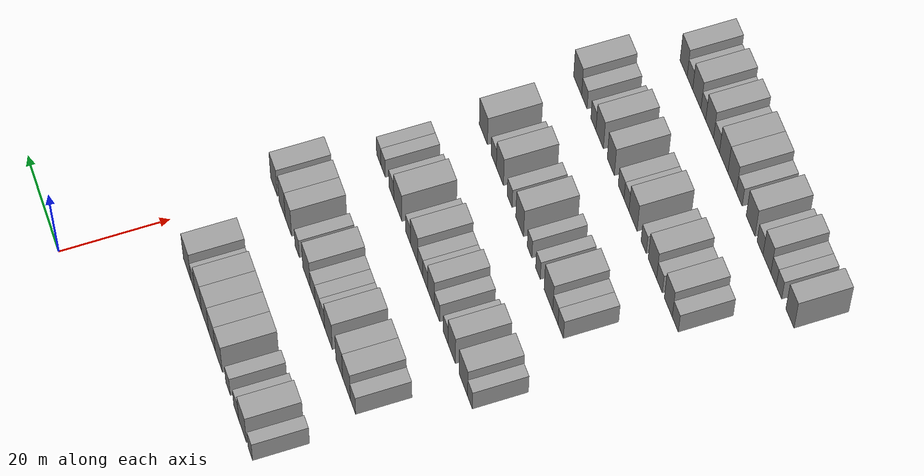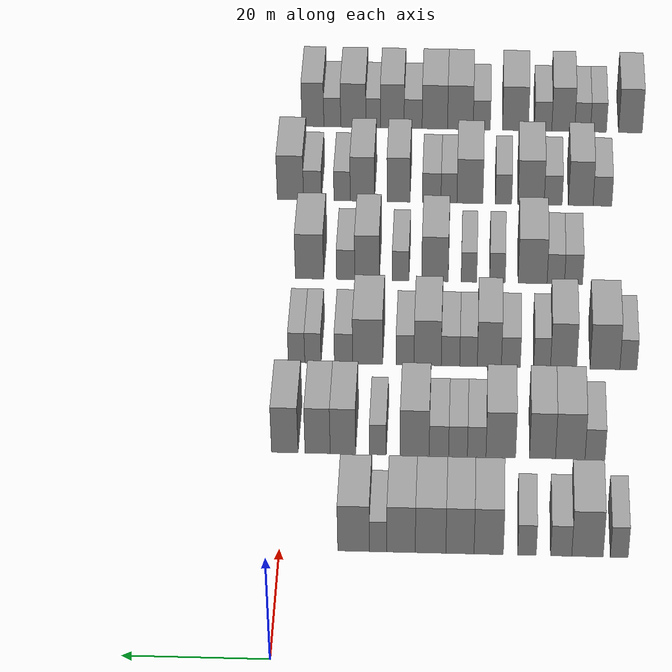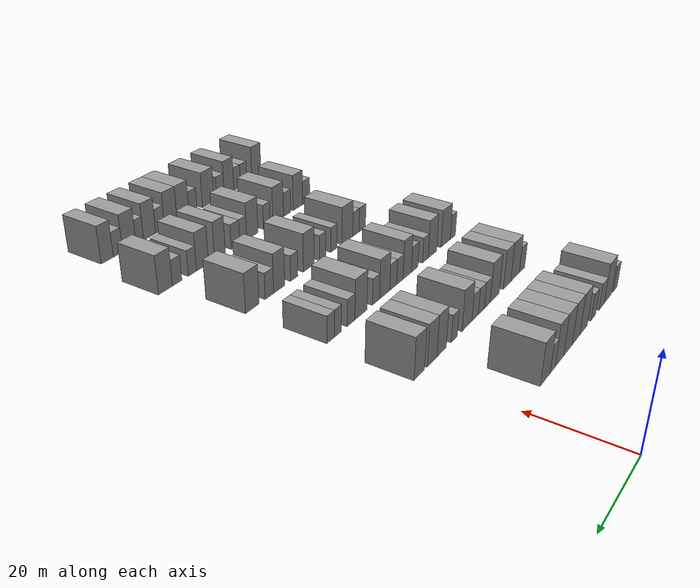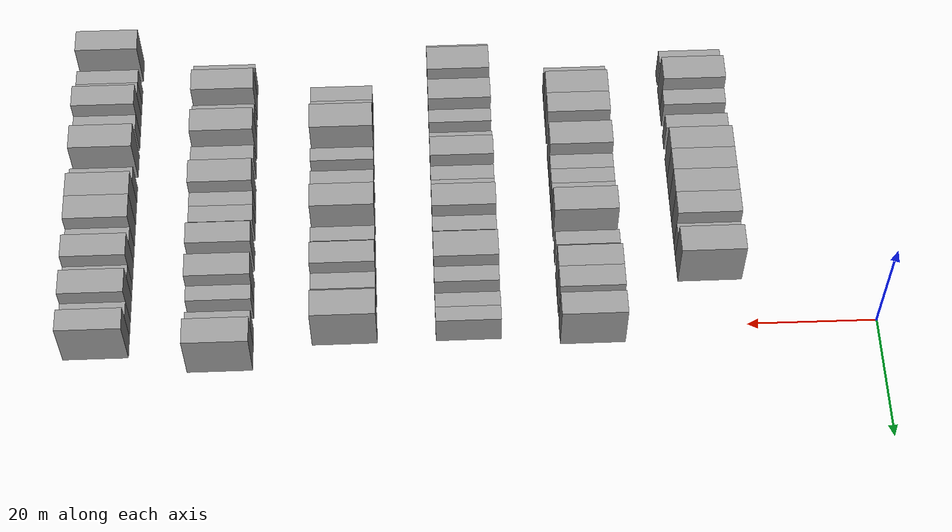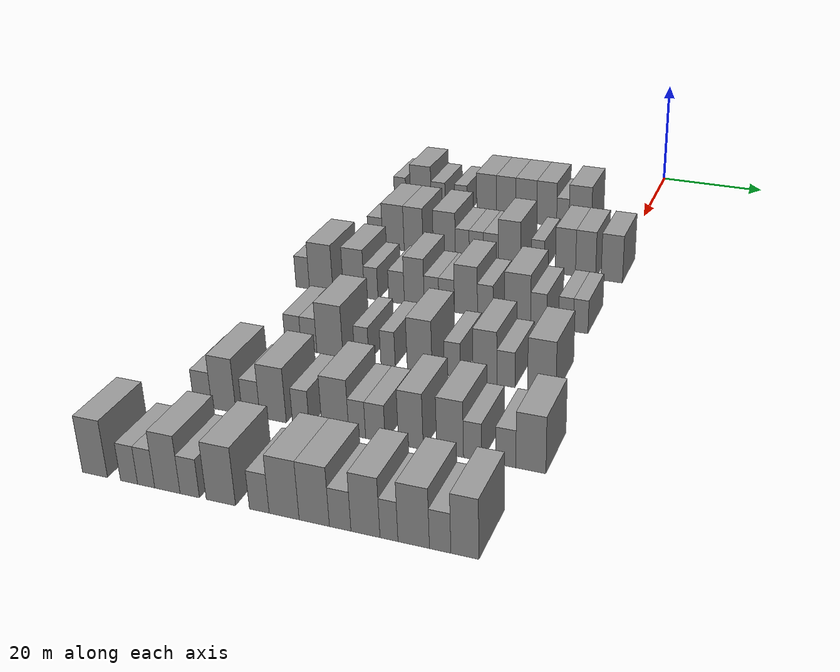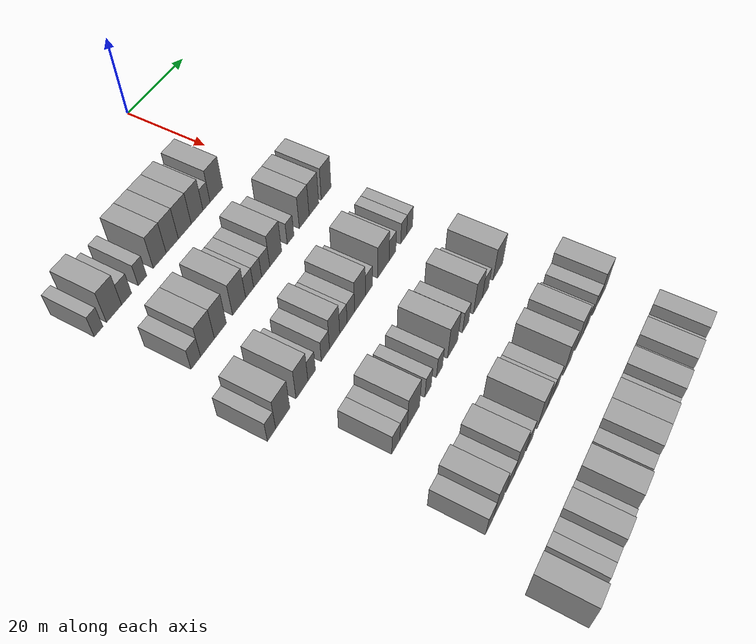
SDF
<sdf version="1.6">
 <world name="default">
  <model name="building_80">
   <static>1</static>
   <pose>25.0000 -47.3221 0 0.000000 0.000000 0.000000</pose>
   <link name="link">
    <pose>0 0 3.00 0 0 0</pose>
    <collision name="collision"><geometry><box><size>10.0000 2.4721 6.0000</size></box></geometry></collision>
    <visual name="visual">
     <cast_shadows>0</cast_shadows>
     <geometry><box><size>10.0000 2.4721 6.0000</size></box></geometry>
     <material>
      <script>
       <uri>model://grey_wall/materials/scripts</uri>
       <uri>model://grey_wall/materials/textures</uri>
       <name>vrc/grey_wall</name>
      </script>
     </material>
    </visual>
   </link>
  </model>
  <model name="building_81">
   <static>1</static>
   <pose>25.0000 -42.9015 0 0.000000 0.000000 0.000000</pose>
   <link name="link">
    <pose>0 0 4.50 0 0 0</pose>
    <collision name="collision"><geometry><box><size>10.0000 4.3690 9.0000</size></box></geometry></collision>
    <visual name="visual">
     <cast_shadows>0</cast_shadows>
     <geometry><box><size>10.0000 4.3690 9.0000</size></box></geometry>
     <material>
      <script>
       <uri>model://grey_wall/materials/scripts</uri>
       <uri>model://grey_wall/materials/textures</uri>
       <name>vrc/grey_wall</name>
      </script>
     </material>
    </visual>
   </link>
  </model>
  <model name="building_82">
   <static>1</static>
   <pose>25.0000 -39.2447 0 0.000000 0.000000 0.000000</pose>
   <link name="link">
    <pose>0 0 3.00 0 0 0</pose>
    <collision name="collision"><geometry><box><size>10.0000 2.9447 6.0000</size></box></geometry></collision>
    <visual name="visual">
     <cast_shadows>0</cast_shadows>
     <geometry><box><size>10.0000 2.9447 6.0000</size></box></geometry>
     <material>
      <script>
       <uri>model://grey_wall/materials/scripts</uri>
       <uri>model://grey_wall/materials/textures</uri>
       <name>vrc/grey_wall</name>
      </script>
     </material>
    </visual>
   </link>
  </model>
  <model name="building_83">
   <static>1</static>
   <pose>25.0000 -34.4802 0 0.000000 0.000000 0.000000</pose>
   <link name="link">
    <pose>0 0 3.00 0 0 0</pose>
    <collision name="collision"><geometry><box><size>10.0000 2.5842 6.0000</size></box></geometry></collision>
    <visual name="visual">
     <cast_shadows>0</cast_shadows>
     <geometry><box><size>10.0000 2.5842 6.0000</size></box></geometry>
     <material>
      <script>
       <uri>model://grey_wall/materials/scripts</uri>
       <uri>model://grey_wall/materials/textures</uri>
       <name>vrc/grey_wall</name>
      </script>
     </material>
    </visual>
   </link>
  </model>
  <model name="building_84">
   <static>1</static>
   <pose>25.0000 -29.1527 0 0.000000 0.000000 0.000000</pose>
   <link name="link">
    <pose>0 0 4.50 0 0 0</pose>
    <collision name="collision"><geometry><box><size>10.0000 4.0708 9.0000</size></box></geometry></collision>
    <visual name="visual">
     <cast_shadows>0</cast_shadows>
     <geometry><box><size>10.0000 4.0708 9.0000</size></box></geometry>
     <material>
      <script>
       <uri>model://grey_wall/materials/scripts</uri>
       <uri>model://grey_wall/materials/textures</uri>
       <name>vrc/grey_wall</name>
      </script>
     </material>
    </visual>
   </link>
  </model>
  <model name="building_85">
   <static>1</static>
   <pose>25.0000 -25.1547 0 0.000000 0.000000 0.000000</pose>
   <link name="link">
    <pose>0 0 4.50 0 0 0</pose>
    <collision name="collision"><geometry><box><size>10.0000 3.9250 9.0000</size></box></geometry></collision>
    <visual name="visual">
     <cast_shadows>0</cast_shadows>
     <geometry><box><size>10.0000 3.9250 9.0000</size></box></geometry>
     <material>
      <script>
       <uri>model://grey_wall/materials/scripts</uri>
       <uri>model://grey_wall/materials/textures</uri>
       <name>vrc/grey_wall</name>
      </script>
     </material>
    </visual>
   </link>
  </model>
  <model name="building_86">
   <static>1</static>
   <pose>25.0000 -21.0648 0 0.000000 0.000000 0.000000</pose>
   <link name="link">
    <pose>0 0 4.50 0 0 0</pose>
    <collision name="collision"><geometry><box><size>10.0000 4.2548 9.0000</size></box></geometry></collision>
    <visual name="visual">
     <cast_shadows>0</cast_shadows>
     <geometry><box><size>10.0000 4.2548 9.0000</size></box></geometry>
     <material>
      <script>
       <uri>model://grey_wall/materials/scripts</uri>
       <uri>model://grey_wall/materials/textures</uri>
       <name>vrc/grey_wall</name>
      </script>
     </material>
    </visual>
   </link>
  </model>
  <model name="building_87">
   <static>1</static>
   <pose>25.0000 -16.9578 0 0.000000 0.000000 0.000000</pose>
   <link name="link">
    <pose>0 0 4.50 0 0 0</pose>
    <collision name="collision"><geometry><box><size>10.0000 3.9593 9.0000</size></box></geometry></collision>
    <visual name="visual">
     <cast_shadows>0</cast_shadows>
     <geometry><box><size>10.0000 3.9593 9.0000</size></box></geometry>
     <material>
      <script>
       <uri>model://grey_wall/materials/scripts</uri>
       <uri>model://grey_wall/materials/textures</uri>
       <name>vrc/grey_wall</name>
      </script>
     </material>
    </visual>
   </link>
  </model>
  <model name="building_88">
   <static>1</static>
   <pose>25.0000 -13.7613 0 0.000000 0.000000 0.000000</pose>
   <link name="link">
    <pose>0 0 3.00 0 0 0</pose>
    <collision name="collision"><geometry><box><size>10.0000 2.4338 6.0000</size></box></geometry></collision>
    <visual name="visual">
     <cast_shadows>0</cast_shadows>
     <geometry><box><size>10.0000 2.4338 6.0000</size></box></geometry>
     <material>
      <script>
       <uri>model://grey_wall/materials/scripts</uri>
       <uri>model://grey_wall/materials/textures</uri>
       <name>vrc/grey_wall</name>
      </script>
     </material>
    </visual>
   </link>
  </model>
  <model name="building_89">
   <static>1</static>
   <pose>25.0000 -10.3332 0 0.000000 0.000000 0.000000</pose>
   <link name="link">
    <pose>0 0 4.50 0 0 0</pose>
    <collision name="collision"><geometry><box><size>10.0000 4.4223 9.0000</size></box></geometry></collision>
    <visual name="visual">
     <cast_shadows>0</cast_shadows>
     <geometry><box><size>10.0000 4.4223 9.0000</size></box></geometry>
     <material>
      <script>
       <uri>model://grey_wall/materials/scripts</uri>
       <uri>model://grey_wall/materials/textures</uri>
       <name>vrc/grey_wall</name>
      </script>
     </material>
    </visual>
   </link>
  </model>
  <model name="building_244">
   <static>1</static>
   <pose>44.0000 -44.3955 0 0.000000 0.000000 0.000000</pose>
   <link name="link">
    <pose>0 0 3.00 0 0 0</pose>
    <collision name="collision"><geometry><box><size>10.0000 2.8827 6.0000</size></box></geometry></collision>
    <visual name="visual">
     <cast_shadows>0</cast_shadows>
     <geometry><box><size>10.0000 2.8827 6.0000</size></box></geometry>
     <material>
      <script>
       <uri>model://grey_wall/materials/scripts</uri>
       <uri>model://grey_wall/materials/textures</uri>
       <name>vrc/grey_wall</name>
      </script>
     </material>
    </visual>
   </link>
  </model>
  <model name="building_245">
   <static>1</static>
   <pose>44.0000 -40.8205 0 0.000000 0.000000 0.000000</pose>
   <link name="link">
    <pose>0 0 4.50 0 0 0</pose>
    <collision name="collision"><geometry><box><size>10.0000 4.2674 9.0000</size></box></geometry></collision>
    <visual name="visual">
     <cast_shadows>0</cast_shadows>
     <geometry><box><size>10.0000 4.2674 9.0000</size></box></geometry>
     <material>
      <script>
       <uri>model://grey_wall/materials/scripts</uri>
       <uri>model://grey_wall/materials/textures</uri>
       <name>vrc/grey_wall</name>
      </script>
     </material>
    </visual>
   </link>
  </model>
  <model name="building_246">
   <static>1</static>
   <pose>44.0000 -36.8082 0 0.000000 0.000000 0.000000</pose>
   <link name="link">
    <pose>0 0 4.50 0 0 0</pose>
    <collision name="collision"><geometry><box><size>10.0000 3.7572 9.0000</size></box></geometry></collision>
    <visual name="visual">
     <cast_shadows>0</cast_shadows>
     <geometry><box><size>10.0000 3.7572 9.0000</size></box></geometry>
     <material>
      <script>
       <uri>model://grey_wall/materials/scripts</uri>
       <uri>model://grey_wall/materials/textures</uri>
       <name>vrc/grey_wall</name>
      </script>
     </material>
    </visual>
   </link>
  </model>
  <model name="building_247">
   <static>1</static>
   <pose>44.0000 -30.7887 0 0.000000 0.000000 0.000000</pose>
   <link name="link">
    <pose>0 0 4.50 0 0 0</pose>
    <collision name="collision"><geometry><box><size>10.0000 4.2819 9.0000</size></box></geometry></collision>
    <visual name="visual">
     <cast_shadows>0</cast_shadows>
     <geometry><box><size>10.0000 4.2819 9.0000</size></box></geometry>
     <material>
      <script>
       <uri>model://grey_wall/materials/scripts</uri>
       <uri>model://grey_wall/materials/textures</uri>
       <name>vrc/grey_wall</name>
      </script>
     </material>
    </visual>
   </link>
  </model>
  <model name="building_248">
   <static>1</static>
   <pose>44.0000 -27.3065 0 0.000000 0.000000 0.000000</pose>
   <link name="link">
    <pose>0 0 3.00 0 0 0</pose>
    <collision name="collision"><geometry><box><size>10.0000 2.6823 6.0000</size></box></geometry></collision>
    <visual name="visual">
     <cast_shadows>0</cast_shadows>
     <geometry><box><size>10.0000 2.6823 6.0000</size></box></geometry>
     <material>
      <script>
       <uri>model://grey_wall/materials/scripts</uri>
       <uri>model://grey_wall/materials/textures</uri>
       <name>vrc/grey_wall</name>
      </script>
     </material>
    </visual>
   </link>
  </model>
  <model name="building_249">
   <static>1</static>
   <pose>44.0000 -24.6082 0 0.000000 0.000000 0.000000</pose>
   <link name="link">
    <pose>0 0 3.00 0 0 0</pose>
    <collision name="collision"><geometry><box><size>10.0000 2.7143 6.0000</size></box></geometry></collision>
    <visual name="visual">
     <cast_shadows>0</cast_shadows>
     <geometry><box><size>10.0000 2.7143 6.0000</size></box></geometry>
     <material>
      <script>
       <uri>model://grey_wall/materials/scripts</uri>
       <uri>model://grey_wall/materials/textures</uri>
       <name>vrc/grey_wall</name>
      </script>
     </material>
    </visual>
   </link>
  </model>
  <model name="building_250">
   <static>1</static>
   <pose>44.0000 -21.8479 0 0.000000 0.000000 0.000000</pose>
   <link name="link">
    <pose>0 0 3.00 0 0 0</pose>
    <collision name="collision"><geometry><box><size>10.0000 2.8063 6.0000</size></box></geometry></collision>
    <visual name="visual">
     <cast_shadows>0</cast_shadows>
     <geometry><box><size>10.0000 2.8063 6.0000</size></box></geometry>
     <material>
      <script>
       <uri>model://grey_wall/materials/scripts</uri>
       <uri>model://grey_wall/materials/textures</uri>
       <name>vrc/grey_wall</name>
      </script>
     </material>
    </visual>
   </link>
  </model>
  <model name="building_251">
   <static>1</static>
   <pose>44.0000 -18.3447 0 0.000000 0.000000 0.000000</pose>
   <link name="link">
    <pose>0 0 4.50 0 0 0</pose>
    <collision name="collision"><geometry><box><size>10.0000 4.2001 9.0000</size></box></geometry></collision>
    <visual name="visual">
     <cast_shadows>0</cast_shadows>
     <geometry><box><size>10.0000 4.2001 9.0000</size></box></geometry>
     <material>
      <script>
       <uri>model://grey_wall/materials/scripts</uri>
       <uri>model://grey_wall/materials/textures</uri>
       <name>vrc/grey_wall</name>
      </script>
     </material>
    </visual>
   </link>
  </model>
  <model name="building_252">
   <static>1</static>
   <pose>44.0000 -13.0252 0 0.000000 0.000000 0.000000</pose>
   <link name="link">
    <pose>0 0 3.00 0 0 0</pose>
    <collision name="collision"><geometry><box><size>10.0000 2.4390 6.0000</size></box></geometry></collision>
    <visual name="visual">
     <cast_shadows>0</cast_shadows>
     <geometry><box><size>10.0000 2.4390 6.0000</size></box></geometry>
     <material>
      <script>
       <uri>model://grey_wall/materials/scripts</uri>
       <uri>model://grey_wall/materials/textures</uri>
       <name>vrc/grey_wall</name>
      </script>
     </material>
    </visual>
   </link>
  </model>
  <model name="building_253">
   <static>1</static>
   <pose>44.0000 -7.9617 0 0.000000 0.000000 0.000000</pose>
   <link name="link">
    <pose>0 0 4.50 0 0 0</pose>
    <collision name="collision"><geometry><box><size>10.0000 3.6881 9.0000</size></box></geometry></collision>
    <visual name="visual">
     <cast_shadows>0</cast_shadows>
     <geometry><box><size>10.0000 3.6881 9.0000</size></box></geometry>
     <material>
      <script>
       <uri>model://grey_wall/materials/scripts</uri>
       <uri>model://grey_wall/materials/textures</uri>
       <name>vrc/grey_wall</name>
      </script>
     </material>
    </visual>
   </link>
  </model>
  <model name="building_254">
   <static>1</static>
   <pose>44.0000 -4.2919 0 0.000000 0.000000 0.000000</pose>
   <link name="link">
    <pose>0 0 4.50 0 0 0</pose>
    <collision name="collision"><geometry><box><size>10.0000 3.6514 9.0000</size></box></geometry></collision>
    <visual name="visual">
     <cast_shadows>0</cast_shadows>
     <geometry><box><size>10.0000 3.6514 9.0000</size></box></geometry>
     <material>
      <script>
       <uri>model://grey_wall/materials/scripts</uri>
       <uri>model://grey_wall/materials/textures</uri>
       <name>vrc/grey_wall</name>
      </script>
     </material>
    </visual>
   </link>
  </model>
  <model name="building_255">
   <static>1</static>
   <pose>44.0000 0.4565 0 0.000000 0.000000 0.000000</pose>
   <link name="link">
    <pose>0 0 4.50 0 0 0</pose>
    <collision name="collision"><geometry><box><size>10.0000 3.8454 9.0000</size></box></geometry></collision>
    <visual name="visual">
     <cast_shadows>0</cast_shadows>
     <geometry><box><size>10.0000 3.8454 9.0000</size></box></geometry>
     <material>
      <script>
       <uri>model://grey_wall/materials/scripts</uri>
       <uri>model://grey_wall/materials/textures</uri>
       <name>vrc/grey_wall</name>
      </script>
     </material>
    </visual>
   </link>
  </model>
  <model name="building_410">
   <static>1</static>
   <pose>63.0000 -49.8174 0 0.000000 0.000000 0.000000</pose>
   <link name="link">
    <pose>0 0 3.00 0 0 0</pose>
    <collision name="collision"><geometry><box><size>10.0000 2.5531 6.0000</size></box></geometry></collision>
    <visual name="visual">
     <cast_shadows>0</cast_shadows>
     <geometry><box><size>10.0000 2.5531 6.0000</size></box></geometry>
     <material>
      <script>
       <uri>model://grey_wall/materials/scripts</uri>
       <uri>model://grey_wall/materials/textures</uri>
       <name>vrc/grey_wall</name>
      </script>
     </material>
    </visual>
   </link>
  </model>
  <model name="building_411">
   <static>1</static>
   <pose>63.0000 -46.3117 0 0.000000 0.000000 0.000000</pose>
   <link name="link">
    <pose>0 0 4.50 0 0 0</pose>
    <collision name="collision"><geometry><box><size>10.0000 4.4583 9.0000</size></box></geometry></collision>
    <visual name="visual">
     <cast_shadows>0</cast_shadows>
     <geometry><box><size>10.0000 4.4583 9.0000</size></box></geometry>
     <material>
      <script>
       <uri>model://grey_wall/materials/scripts</uri>
       <uri>model://grey_wall/materials/textures</uri>
       <name>vrc/grey_wall</name>
      </script>
     </material>
    </visual>
   </link>
  </model>
  <model name="building_412">
   <static>1</static>
   <pose>63.0000 -40.1273 0 0.000000 0.000000 0.000000</pose>
   <link name="link">
    <pose>0 0 4.50 0 0 0</pose>
    <collision name="collision"><geometry><box><size>10.0000 3.9106 9.0000</size></box></geometry></collision>
    <visual name="visual">
     <cast_shadows>0</cast_shadows>
     <geometry><box><size>10.0000 3.9106 9.0000</size></box></geometry>
     <material>
      <script>
       <uri>model://grey_wall/materials/scripts</uri>
       <uri>model://grey_wall/materials/textures</uri>
       <name>vrc/grey_wall</name>
      </script>
     </material>
    </visual>
   </link>
  </model>
  <model name="building_413">
   <static>1</static>
   <pose>63.0000 -36.9164 0 0.000000 0.000000 0.000000</pose>
   <link name="link">
    <pose>0 0 3.00 0 0 0</pose>
    <collision name="collision"><geometry><box><size>10.0000 2.5112 6.0000</size></box></geometry></collision>
    <visual name="visual">
     <cast_shadows>0</cast_shadows>
     <geometry><box><size>10.0000 2.5112 6.0000</size></box></geometry>
     <material>
      <script>
       <uri>model://grey_wall/materials/scripts</uri>
       <uri>model://grey_wall/materials/textures</uri>
       <name>vrc/grey_wall</name>
      </script>
     </material>
    </visual>
   </link>
  </model>
  <model name="building_414">
   <static>1</static>
   <pose>63.0000 -32.2418 0 0.000000 0.000000 0.000000</pose>
   <link name="link">
    <pose>0 0 3.00 0 0 0</pose>
    <collision name="collision"><geometry><box><size>10.0000 2.8379 6.0000</size></box></geometry></collision>
    <visual name="visual">
     <cast_shadows>0</cast_shadows>
     <geometry><box><size>10.0000 2.8379 6.0000</size></box></geometry>
     <material>
      <script>
       <uri>model://grey_wall/materials/scripts</uri>
       <uri>model://grey_wall/materials/textures</uri>
       <name>vrc/grey_wall</name>
      </script>
     </material>
    </visual>
   </link>
  </model>
  <model name="building_415">
   <static>1</static>
   <pose>63.0000 -29.0200 0 0.000000 0.000000 0.000000</pose>
   <link name="link">
    <pose>0 0 4.50 0 0 0</pose>
    <collision name="collision"><geometry><box><size>10.0000 3.6058 9.0000</size></box></geometry></collision>
    <visual name="visual">
     <cast_shadows>0</cast_shadows>
     <geometry><box><size>10.0000 3.6058 9.0000</size></box></geometry>
     <material>
      <script>
       <uri>model://grey_wall/materials/scripts</uri>
       <uri>model://grey_wall/materials/textures</uri>
       <name>vrc/grey_wall</name>
      </script>
     </material>
    </visual>
   </link>
  </model>
  <model name="building_416">
   <static>1</static>
   <pose>63.0000 -25.9020 0 0.000000 0.000000 0.000000</pose>
   <link name="link">
    <pose>0 0 3.00 0 0 0</pose>
    <collision name="collision"><geometry><box><size>10.0000 2.6302 6.0000</size></box></geometry></collision>
    <visual name="visual">
     <cast_shadows>0</cast_shadows>
     <geometry><box><size>10.0000 2.6302 6.0000</size></box></geometry>
     <material>
      <script>
       <uri>model://grey_wall/materials/scripts</uri>
       <uri>model://grey_wall/materials/textures</uri>
       <name>vrc/grey_wall</name>
      </script>
     </material>
    </visual>
   </link>
  </model>
  <model name="building_417">
   <static>1</static>
   <pose>63.0000 -23.2046 0 0.000000 0.000000 0.000000</pose>
   <link name="link">
    <pose>0 0 3.00 0 0 0</pose>
    <collision name="collision"><geometry><box><size>10.0000 2.7645 6.0000</size></box></geometry></collision>
    <visual name="visual">
     <cast_shadows>0</cast_shadows>
     <geometry><box><size>10.0000 2.7645 6.0000</size></box></geometry>
     <material>
      <script>
       <uri>model://grey_wall/materials/scripts</uri>
       <uri>model://grey_wall/materials/textures</uri>
       <name>vrc/grey_wall</name>
      </script>
     </material>
    </visual>
   </link>
  </model>
  <model name="building_418">
   <static>1</static>
   <pose>63.0000 -19.7952 0 0.000000 0.000000 0.000000</pose>
   <link name="link">
    <pose>0 0 4.50 0 0 0</pose>
    <collision name="collision"><geometry><box><size>10.0000 4.0543 9.0000</size></box></geometry></collision>
    <visual name="visual">
     <cast_shadows>0</cast_shadows>
     <geometry><box><size>10.0000 4.0543 9.0000</size></box></geometry>
     <material>
      <script>
       <uri>model://grey_wall/materials/scripts</uri>
       <uri>model://grey_wall/materials/textures</uri>
       <name>vrc/grey_wall</name>
      </script>
     </material>
    </visual>
   </link>
  </model>
  <model name="building_419">
   <static>1</static>
   <pose>63.0000 -16.4064 0 0.000000 0.000000 0.000000</pose>
   <link name="link">
    <pose>0 0 3.00 0 0 0</pose>
    <collision name="collision"><geometry><box><size>10.0000 2.7233 6.0000</size></box></geometry></collision>
    <visual name="visual">
     <cast_shadows>0</cast_shadows>
     <geometry><box><size>10.0000 2.7233 6.0000</size></box></geometry>
     <material>
      <script>
       <uri>model://grey_wall/materials/scripts</uri>
       <uri>model://grey_wall/materials/textures</uri>
       <name>vrc/grey_wall</name>
      </script>
     </material>
    </visual>
   </link>
  </model>
  <model name="building_420">
   <static>1</static>
   <pose>63.0000 -10.7995 0 0.000000 0.000000 0.000000</pose>
   <link name="link">
    <pose>0 0 4.50 0 0 0</pose>
    <collision name="collision"><geometry><box><size>10.0000 4.4906 9.0000</size></box></geometry></collision>
    <visual name="visual">
     <cast_shadows>0</cast_shadows>
     <geometry><box><size>10.0000 4.4906 9.0000</size></box></geometry>
     <material>
      <script>
       <uri>model://grey_wall/materials/scripts</uri>
       <uri>model://grey_wall/materials/textures</uri>
       <name>vrc/grey_wall</name>
      </script>
     </material>
    </visual>
   </link>
  </model>
  <model name="building_421">
   <static>1</static>
   <pose>63.0000 -7.1808 0 0.000000 0.000000 0.000000</pose>
   <link name="link">
    <pose>0 0 3.00 0 0 0</pose>
    <collision name="collision"><geometry><box><size>10.0000 2.7466 6.0000</size></box></geometry></collision>
    <visual name="visual">
     <cast_shadows>0</cast_shadows>
     <geometry><box><size>10.0000 2.7466 6.0000</size></box></geometry>
     <material>
      <script>
       <uri>model://grey_wall/materials/scripts</uri>
       <uri>model://grey_wall/materials/textures</uri>
       <name>vrc/grey_wall</name>
      </script>
     </material>
    </visual>
   </link>
  </model>
  <model name="building_422">
   <static>1</static>
   <pose>63.0000 -2.5815 0 0.000000 0.000000 0.000000</pose>
   <link name="link">
    <pose>0 0 3.00 0 0 0</pose>
    <collision name="collision"><geometry><box><size>10.0000 2.4520 6.0000</size></box></geometry></collision>
    <visual name="visual">
     <cast_shadows>0</cast_shadows>
     <geometry><box><size>10.0000 2.4520 6.0000</size></box></geometry>
     <material>
      <script>
       <uri>model://grey_wall/materials/scripts</uri>
       <uri>model://grey_wall/materials/textures</uri>
       <name>vrc/grey_wall</name>
      </script>
     </material>
    </visual>
   </link>
  </model>
  <model name="building_423">
   <static>1</static>
   <pose>63.0000 -0.1196 0 0.000000 0.000000 0.000000</pose>
   <link name="link">
    <pose>0 0 3.00 0 0 0</pose>
    <collision name="collision"><geometry><box><size>10.0000 2.4719 6.0000</size></box></geometry></collision>
    <visual name="visual">
     <cast_shadows>0</cast_shadows>
     <geometry><box><size>10.0000 2.4719 6.0000</size></box></geometry>
     <material>
      <script>
       <uri>model://grey_wall/materials/scripts</uri>
       <uri>model://grey_wall/materials/textures</uri>
       <name>vrc/grey_wall</name>
      </script>
     </material>
    </visual>
   </link>
  </model>
  <model name="building_589">
   <static>1</static>
   <pose>82.0000 -41.9427 0 0.000000 0.000000 0.000000</pose>
   <link name="link">
    <pose>0 0 3.00 0 0 0</pose>
    <collision name="collision"><geometry><box><size>10.0000 2.7938 6.0000</size></box></geometry></collision>
    <visual name="visual">
     <cast_shadows>0</cast_shadows>
     <geometry><box><size>10.0000 2.7938 6.0000</size></box></geometry>
     <material>
      <script>
       <uri>model://grey_wall/materials/scripts</uri>
       <uri>model://grey_wall/materials/textures</uri>
       <name>vrc/grey_wall</name>
      </script>
     </material>
    </visual>
   </link>
  </model>
  <model name="building_590">
   <static>1</static>
   <pose>82.0000 -39.1958 0 0.000000 0.000000 0.000000</pose>
   <link name="link">
    <pose>0 0 3.00 0 0 0</pose>
    <collision name="collision"><geometry><box><size>10.0000 2.7001 6.0000</size></box></geometry></collision>
    <visual name="visual">
     <cast_shadows>0</cast_shadows>
     <geometry><box><size>10.0000 2.7001 6.0000</size></box></geometry>
     <material>
      <script>
       <uri>model://grey_wall/materials/scripts</uri>
       <uri>model://grey_wall/materials/textures</uri>
       <name>vrc/grey_wall</name>
      </script>
     </material>
    </visual>
   </link>
  </model>
  <model name="building_591">
   <static>1</static>
   <pose>82.0000 -35.6001 0 0.000000 0.000000 0.000000</pose>
   <link name="link">
    <pose>0 0 4.50 0 0 0</pose>
    <collision name="collision"><geometry><box><size>10.0000 4.4913 9.0000</size></box></geometry></collision>
    <visual name="visual">
     <cast_shadows>0</cast_shadows>
     <geometry><box><size>10.0000 4.4913 9.0000</size></box></geometry>
     <material>
      <script>
       <uri>model://grey_wall/materials/scripts</uri>
       <uri>model://grey_wall/materials/textures</uri>
       <name>vrc/grey_wall</name>
      </script>
     </material>
    </visual>
   </link>
  </model>
  <model name="building_592">
   <static>1</static>
   <pose>82.0000 -30.1511 0 0.000000 0.000000 0.000000</pose>
   <link name="link">
    <pose>0 0 3.00 0 0 0</pose>
    <collision name="collision"><geometry><box><size>10.0000 2.4069 6.0000</size></box></geometry></collision>
    <visual name="visual">
     <cast_shadows>0</cast_shadows>
     <geometry><box><size>10.0000 2.4069 6.0000</size></box></geometry>
     <material>
      <script>
       <uri>model://grey_wall/materials/scripts</uri>
       <uri>model://grey_wall/materials/textures</uri>
       <name>vrc/grey_wall</name>
      </script>
     </material>
    </visual>
   </link>
  </model>
  <model name="building_593">
   <static>1</static>
   <pose>82.0000 -25.7452 0 0.000000 0.000000 0.000000</pose>
   <link name="link">
    <pose>0 0 3.00 0 0 0</pose>
    <collision name="collision"><geometry><box><size>10.0000 2.4048 6.0000</size></box></geometry></collision>
    <visual name="visual">
     <cast_shadows>0</cast_shadows>
     <geometry><box><size>10.0000 2.4048 6.0000</size></box></geometry>
     <material>
      <script>
       <uri>model://grey_wall/materials/scripts</uri>
       <uri>model://grey_wall/materials/textures</uri>
       <name>vrc/grey_wall</name>
      </script>
     </material>
    </visual>
   </link>
  </model>
  <model name="building_594">
   <static>1</static>
   <pose>82.0000 -20.4985 0 0.000000 0.000000 0.000000</pose>
   <link name="link">
    <pose>0 0 4.50 0 0 0</pose>
    <collision name="collision"><geometry><box><size>10.0000 4.0887 9.0000</size></box></geometry></collision>
    <visual name="visual">
     <cast_shadows>0</cast_shadows>
     <geometry><box><size>10.0000 4.0887 9.0000</size></box></geometry>
     <material>
      <script>
       <uri>model://grey_wall/materials/scripts</uri>
       <uri>model://grey_wall/materials/textures</uri>
       <name>vrc/grey_wall</name>
      </script>
     </material>
    </visual>
   </link>
  </model>
  <model name="building_595">
   <static>1</static>
   <pose>82.0000 -15.1555 0 0.000000 0.000000 0.000000</pose>
   <link name="link">
    <pose>0 0 3.00 0 0 0</pose>
    <collision name="collision"><geometry><box><size>10.0000 2.5972 6.0000</size></box></geometry></collision>
    <visual name="visual">
     <cast_shadows>0</cast_shadows>
     <geometry><box><size>10.0000 2.5972 6.0000</size></box></geometry>
     <material>
      <script>
       <uri>model://grey_wall/materials/scripts</uri>
       <uri>model://grey_wall/materials/textures</uri>
       <name>vrc/grey_wall</name>
      </script>
     </material>
    </visual>
   </link>
  </model>
  <model name="building_596">
   <static>1</static>
   <pose>82.0000 -9.9549 0 0.000000 0.000000 0.000000</pose>
   <link name="link">
    <pose>0 0 4.50 0 0 0</pose>
    <collision name="collision"><geometry><box><size>10.0000 3.8040 9.0000</size></box></geometry></collision>
    <visual name="visual">
     <cast_shadows>0</cast_shadows>
     <geometry><box><size>10.0000 3.8040 9.0000</size></box></geometry>
     <material>
      <script>
       <uri>model://grey_wall/materials/scripts</uri>
       <uri>model://grey_wall/materials/textures</uri>
       <name>vrc/grey_wall</name>
      </script>
     </material>
    </visual>
   </link>
  </model>
  <model name="building_597">
   <static>1</static>
   <pose>82.0000 -6.6315 0 0.000000 0.000000 0.000000</pose>
   <link name="link">
    <pose>0 0 3.00 0 0 0</pose>
    <collision name="collision"><geometry><box><size>10.0000 2.8429 6.0000</size></box></geometry></collision>
    <visual name="visual">
     <cast_shadows>0</cast_shadows>
     <geometry><box><size>10.0000 2.8429 6.0000</size></box></geometry>
     <material>
      <script>
       <uri>model://grey_wall/materials/scripts</uri>
       <uri>model://grey_wall/materials/textures</uri>
       <name>vrc/grey_wall</name>
      </script>
     </material>
    </visual>
   </link>
  </model>
  <model name="building_598">
   <static>1</static>
   <pose>82.0000 -1.0185 0 0.000000 0.000000 0.000000</pose>
   <link name="link">
    <pose>0 0 4.50 0 0 0</pose>
    <collision name="collision"><geometry><box><size>10.0000 4.3831 9.0000</size></box></geometry></collision>
    <visual name="visual">
     <cast_shadows>0</cast_shadows>
     <geometry><box><size>10.0000 4.3831 9.0000</size></box></geometry>
     <material>
      <script>
       <uri>model://grey_wall/materials/scripts</uri>
       <uri>model://grey_wall/materials/textures</uri>
       <name>vrc/grey_wall</name>
      </script>
     </material>
    </visual>
   </link>
  </model>
  <model name="building_758">
   <static>1</static>
   <pose>101.0000 -46.8863 0 0.000000 0.000000 0.000000</pose>
   <link name="link">
    <pose>0 0 3.00 0 0 0</pose>
    <collision name="collision"><geometry><box><size>10.0000 2.9886 6.0000</size></box></geometry></collision>
    <visual name="visual">
     <cast_shadows>0</cast_shadows>
     <geometry><box><size>10.0000 2.9886 6.0000</size></box></geometry>
     <material>
      <script>
       <uri>model://grey_wall/materials/scripts</uri>
       <uri>model://grey_wall/materials/textures</uri>
       <name>vrc/grey_wall</name>
      </script>
     </material>
    </visual>
   </link>
  </model>
  <model name="building_759">
   <static>1</static>
   <pose>101.0000 -43.4188 0 0.000000 0.000000 0.000000</pose>
   <link name="link">
    <pose>0 0 4.50 0 0 0</pose>
    <collision name="collision"><geometry><box><size>10.0000 3.9465 9.0000</size></box></geometry></collision>
    <visual name="visual">
     <cast_shadows>0</cast_shadows>
     <geometry><box><size>10.0000 3.9465 9.0000</size></box></geometry>
     <material>
      <script>
       <uri>model://grey_wall/materials/scripts</uri>
       <uri>model://grey_wall/materials/textures</uri>
       <name>vrc/grey_wall</name>
      </script>
     </material>
    </visual>
   </link>
  </model>
  <model name="building_760">
   <static>1</static>
   <pose>101.0000 -39.0096 0 0.000000 0.000000 0.000000</pose>
   <link name="link">
    <pose>0 0 3.00 0 0 0</pose>
    <collision name="collision"><geometry><box><size>10.0000 2.8720 6.0000</size></box></geometry></collision>
    <visual name="visual">
     <cast_shadows>0</cast_shadows>
     <geometry><box><size>10.0000 2.8720 6.0000</size></box></geometry>
     <material>
      <script>
       <uri>model://grey_wall/materials/scripts</uri>
       <uri>model://grey_wall/materials/textures</uri>
       <name>vrc/grey_wall</name>
      </script>
     </material>
    </visual>
   </link>
  </model>
  <model name="building_761">
   <static>1</static>
   <pose>101.0000 -35.4742 0 0.000000 0.000000 0.000000</pose>
   <link name="link">
    <pose>0 0 4.50 0 0 0</pose>
    <collision name="collision"><geometry><box><size>10.0000 4.1988 9.0000</size></box></geometry></collision>
    <visual name="visual">
     <cast_shadows>0</cast_shadows>
     <geometry><box><size>10.0000 4.1988 9.0000</size></box></geometry>
     <material>
      <script>
       <uri>model://grey_wall/materials/scripts</uri>
       <uri>model://grey_wall/materials/textures</uri>
       <name>vrc/grey_wall</name>
      </script>
     </material>
    </visual>
   </link>
  </model>
  <model name="building_762">
   <static>1</static>
   <pose>101.0000 -31.0665 0 0.000000 0.000000 0.000000</pose>
   <link name="link">
    <pose>0 0 3.00 0 0 0</pose>
    <collision name="collision"><geometry><box><size>10.0000 2.6165 6.0000</size></box></geometry></collision>
    <visual name="visual">
     <cast_shadows>0</cast_shadows>
     <geometry><box><size>10.0000 2.6165 6.0000</size></box></geometry>
     <material>
      <script>
       <uri>model://grey_wall/materials/scripts</uri>
       <uri>model://grey_wall/materials/textures</uri>
       <name>vrc/grey_wall</name>
      </script>
     </material>
    </visual>
   </link>
  </model>
  <model name="building_763">
   <static>1</static>
   <pose>101.0000 -25.6819 0 0.000000 0.000000 0.000000</pose>
   <link name="link">
    <pose>0 0 4.50 0 0 0</pose>
    <collision name="collision"><geometry><box><size>10.0000 4.1529 9.0000</size></box></geometry></collision>
    <visual name="visual">
     <cast_shadows>0</cast_shadows>
     <geometry><box><size>10.0000 4.1529 9.0000</size></box></geometry>
     <material>
      <script>
       <uri>model://grey_wall/materials/scripts</uri>
       <uri>model://grey_wall/materials/textures</uri>
       <name>vrc/grey_wall</name>
      </script>
     </material>
    </visual>
   </link>
  </model>
  <model name="building_764">
   <static>1</static>
   <pose>101.0000 -22.3312 0 0.000000 0.000000 0.000000</pose>
   <link name="link">
    <pose>0 0 3.00 0 0 0</pose>
    <collision name="collision"><geometry><box><size>10.0000 2.5484 6.0000</size></box></geometry></collision>
    <visual name="visual">
     <cast_shadows>0</cast_shadows>
     <geometry><box><size>10.0000 2.5484 6.0000</size></box></geometry>
     <material>
      <script>
       <uri>model://grey_wall/materials/scripts</uri>
       <uri>model://grey_wall/materials/textures</uri>
       <name>vrc/grey_wall</name>
      </script>
     </material>
    </visual>
   </link>
  </model>
  <model name="building_765">
   <static>1</static>
   <pose>101.0000 -19.5704 0 0.000000 0.000000 0.000000</pose>
   <link name="link">
    <pose>0 0 3.00 0 0 0</pose>
    <collision name="collision"><geometry><box><size>10.0000 2.9733 6.0000</size></box></geometry></collision>
    <visual name="visual">
     <cast_shadows>0</cast_shadows>
     <geometry><box><size>10.0000 2.9733 6.0000</size></box></geometry>
     <material>
      <script>
       <uri>model://grey_wall/materials/scripts</uri>
       <uri>model://grey_wall/materials/textures</uri>
       <name>vrc/grey_wall</name>
      </script>
     </material>
    </visual>
   </link>
  </model>
  <model name="building_766">
   <static>1</static>
   <pose>101.0000 -14.2437 0 0.000000 0.000000 0.000000</pose>
   <link name="link">
    <pose>0 0 4.50 0 0 0</pose>
    <collision name="collision"><geometry><box><size>10.0000 3.6801 9.0000</size></box></geometry></collision>
    <visual name="visual">
     <cast_shadows>0</cast_shadows>
     <geometry><box><size>10.0000 3.6801 9.0000</size></box></geometry>
     <material>
      <script>
       <uri>model://grey_wall/materials/scripts</uri>
       <uri>model://grey_wall/materials/textures</uri>
       <name>vrc/grey_wall</name>
      </script>
     </material>
    </visual>
   </link>
  </model>
  <model name="building_767">
   <static>1</static>
   <pose>101.0000 -8.4567 0 0.000000 0.000000 0.000000</pose>
   <link name="link">
    <pose>0 0 4.50 0 0 0</pose>
    <collision name="collision"><geometry><box><size>10.0000 3.8938 9.0000</size></box></geometry></collision>
    <visual name="visual">
     <cast_shadows>0</cast_shadows>
     <geometry><box><size>10.0000 3.8938 9.0000</size></box></geometry>
     <material>
      <script>
       <uri>model://grey_wall/materials/scripts</uri>
       <uri>model://grey_wall/materials/textures</uri>
       <name>vrc/grey_wall</name>
      </script>
     </material>
    </visual>
   </link>
  </model>
  <model name="building_768">
   <static>1</static>
   <pose>101.0000 -5.1970 0 0.000000 0.000000 0.000000</pose>
   <link name="link">
    <pose>0 0 3.00 0 0 0</pose>
    <collision name="collision"><geometry><box><size>10.0000 2.6257 6.0000</size></box></geometry></collision>
    <visual name="visual">
     <cast_shadows>0</cast_shadows>
     <geometry><box><size>10.0000 2.6257 6.0000</size></box></geometry>
     <material>
      <script>
       <uri>model://grey_wall/materials/scripts</uri>
       <uri>model://grey_wall/materials/textures</uri>
       <name>vrc/grey_wall</name>
      </script>
     </material>
    </visual>
   </link>
  </model>
  <model name="building_769">
   <static>1</static>
   <pose>101.0000 -0.4449 0 0.000000 0.000000 0.000000</pose>
   <link name="link">
    <pose>0 0 3.00 0 0 0</pose>
    <collision name="collision"><geometry><box><size>10.0000 2.8785 6.0000</size></box></geometry></collision>
    <visual name="visual">
     <cast_shadows>0</cast_shadows>
     <geometry><box><size>10.0000 2.8785 6.0000</size></box></geometry>
     <material>
      <script>
       <uri>model://grey_wall/materials/scripts</uri>
       <uri>model://grey_wall/materials/textures</uri>
       <name>vrc/grey_wall</name>
      </script>
     </material>
    </visual>
   </link>
  </model>
  <model name="building_770">
   <static>1</static>
   <pose>101.0000 3.1016 0 0.000000 0.000000 0.000000</pose>
   <link name="link">
    <pose>0 0 4.50 0 0 0</pose>
    <collision name="collision"><geometry><box><size>10.0000 4.2146 9.0000</size></box></geometry></collision>
    <visual name="visual">
     <cast_shadows>0</cast_shadows>
     <geometry><box><size>10.0000 4.2146 9.0000</size></box></geometry>
     <material>
      <script>
       <uri>model://grey_wall/materials/scripts</uri>
       <uri>model://grey_wall/materials/textures</uri>
       <name>vrc/grey_wall</name>
      </script>
     </material>
    </visual>
   </link>
  </model>
  <model name="building_927">
   <static>1</static>
   <pose>120.0000 -51.9736 0 0.000000 0.000000 0.000000</pose>
   <link name="link">
    <pose>0 0 4.50 0 0 0</pose>
    <collision name="collision"><geometry><box><size>10.0000 3.8959 9.0000</size></box></geometry></collision>
    <visual name="visual">
     <cast_shadows>0</cast_shadows>
     <geometry><box><size>10.0000 3.8959 9.0000</size></box></geometry>
     <material>
      <script>
       <uri>model://grey_wall/materials/scripts</uri>
       <uri>model://grey_wall/materials/textures</uri>
       <name>vrc/grey_wall</name>
      </script>
     </material>
    </visual>
   </link>
  </model>
  <model name="building_928">
   <static>1</static>
   <pose>120.0000 -46.7137 0 0.000000 0.000000 0.000000</pose>
   <link name="link">
    <pose>0 0 3.00 0 0 0</pose>
    <collision name="collision"><geometry><box><size>10.0000 2.6240 6.0000</size></box></geometry></collision>
    <visual name="visual">
     <cast_shadows>0</cast_shadows>
     <geometry><box><size>10.0000 2.6240 6.0000</size></box></geometry>
     <material>
      <script>
       <uri>model://grey_wall/materials/scripts</uri>
       <uri>model://grey_wall/materials/textures</uri>
       <name>vrc/grey_wall</name>
      </script>
     </material>
    </visual>
   </link>
  </model>
  <model name="building_929">
   <static>1</static>
   <pose>120.0000 -44.0988 0 0.000000 0.000000 0.000000</pose>
   <link name="link">
    <pose>0 0 3.00 0 0 0</pose>
    <collision name="collision"><geometry><box><size>10.0000 2.6056 6.0000</size></box></geometry></collision>
    <visual name="visual">
     <cast_shadows>0</cast_shadows>
     <geometry><box><size>10.0000 2.6056 6.0000</size></box></geometry>
     <material>
      <script>
       <uri>model://grey_wall/materials/scripts</uri>
       <uri>model://grey_wall/materials/textures</uri>
       <name>vrc/grey_wall</name>
      </script>
     </material>
    </visual>
   </link>
  </model>
  <model name="building_930">
   <static>1</static>
   <pose>120.0000 -40.8960 0 0.000000 0.000000 0.000000</pose>
   <link name="link">
    <pose>0 0 4.50 0 0 0</pose>
    <collision name="collision"><geometry><box><size>10.0000 3.7999 9.0000</size></box></geometry></collision>
    <visual name="visual">
     <cast_shadows>0</cast_shadows>
     <geometry><box><size>10.0000 3.7999 9.0000</size></box></geometry>
     <material>
      <script>
       <uri>model://grey_wall/materials/scripts</uri>
       <uri>model://grey_wall/materials/textures</uri>
       <name>vrc/grey_wall</name>
      </script>
     </material>
    </visual>
   </link>
  </model>
  <model name="building_931">
   <static>1</static>
   <pose>120.0000 -37.5584 0 0.000000 0.000000 0.000000</pose>
   <link name="link">
    <pose>0 0 3.00 0 0 0</pose>
    <collision name="collision"><geometry><box><size>10.0000 2.8753 6.0000</size></box></geometry></collision>
    <visual name="visual">
     <cast_shadows>0</cast_shadows>
     <geometry><box><size>10.0000 2.8753 6.0000</size></box></geometry>
     <material>
      <script>
       <uri>model://grey_wall/materials/scripts</uri>
       <uri>model://grey_wall/materials/textures</uri>
       <name>vrc/grey_wall</name>
      </script>
     </material>
    </visual>
   </link>
  </model>
  <model name="building_932">
   <static>1</static>
   <pose>120.0000 -32.9792 0 0.000000 0.000000 0.000000</pose>
   <link name="link">
    <pose>0 0 4.50 0 0 0</pose>
    <collision name="collision"><geometry><box><size>10.0000 4.2833 9.0000</size></box></geometry></collision>
    <visual name="visual">
     <cast_shadows>0</cast_shadows>
     <geometry><box><size>10.0000 4.2833 9.0000</size></box></geometry>
     <material>
      <script>
       <uri>model://grey_wall/materials/scripts</uri>
       <uri>model://grey_wall/materials/textures</uri>
       <name>vrc/grey_wall</name>
      </script>
     </material>
    </visual>
   </link>
  </model>
  <model name="building_933">
   <static>1</static>
   <pose>120.0000 -27.4238 0 0.000000 0.000000 0.000000</pose>
   <link name="link">
    <pose>0 0 3.00 0 0 0</pose>
    <collision name="collision"><geometry><box><size>10.0000 2.8273 6.0000</size></box></geometry></collision>
    <visual name="visual">
     <cast_shadows>0</cast_shadows>
     <geometry><box><size>10.0000 2.8273 6.0000</size></box></geometry>
     <material>
      <script>
       <uri>model://grey_wall/materials/scripts</uri>
       <uri>model://grey_wall/materials/textures</uri>
       <name>vrc/grey_wall</name>
      </script>
     </material>
    </visual>
   </link>
  </model>
  <model name="building_934">
   <static>1</static>
   <pose>120.0000 -23.8927 0 0.000000 0.000000 0.000000</pose>
   <link name="link">
    <pose>0 0 4.50 0 0 0</pose>
    <collision name="collision"><geometry><box><size>10.0000 4.2348 9.0000</size></box></geometry></collision>
    <visual name="visual">
     <cast_shadows>0</cast_shadows>
     <geometry><box><size>10.0000 4.2348 9.0000</size></box></geometry>
     <material>
      <script>
       <uri>model://grey_wall/materials/scripts</uri>
       <uri>model://grey_wall/materials/textures</uri>
       <name>vrc/grey_wall</name>
      </script>
     </material>
    </visual>
   </link>
  </model>
  <model name="building_935">
   <static>1</static>
   <pose>120.0000 -19.6703 0 0.000000 0.000000 0.000000</pose>
   <link name="link">
    <pose>0 0 4.50 0 0 0</pose>
    <collision name="collision"><geometry><box><size>10.0000 4.2100 9.0000</size></box></geometry></collision>
    <visual name="visual">
     <cast_shadows>0</cast_shadows>
     <geometry><box><size>10.0000 4.2100 9.0000</size></box></geometry>
     <material>
      <script>
       <uri>model://grey_wall/materials/scripts</uri>
       <uri>model://grey_wall/materials/textures</uri>
       <name>vrc/grey_wall</name>
      </script>
     </material>
    </visual>
   </link>
  </model>
  <model name="building_936">
   <static>1</static>
   <pose>120.0000 -16.0831 0 0.000000 0.000000 0.000000</pose>
   <link name="link">
    <pose>0 0 3.00 0 0 0</pose>
    <collision name="collision"><geometry><box><size>10.0000 2.9644 6.0000</size></box></geometry></collision>
    <visual name="visual">
     <cast_shadows>0</cast_shadows>
     <geometry><box><size>10.0000 2.9644 6.0000</size></box></geometry>
     <material>
      <script>
       <uri>model://grey_wall/materials/scripts</uri>
       <uri>model://grey_wall/materials/textures</uri>
       <name>vrc/grey_wall</name>
      </script>
     </material>
    </visual>
   </link>
  </model>
  <model name="building_937">
   <static>1</static>
   <pose>120.0000 -12.6337 0 0.000000 0.000000 0.000000</pose>
   <link name="link">
    <pose>0 0 4.50 0 0 0</pose>
    <collision name="collision"><geometry><box><size>10.0000 3.9344 9.0000</size></box></geometry></collision>
    <visual name="visual">
     <cast_shadows>0</cast_shadows>
     <geometry><box><size>10.0000 3.9344 9.0000</size></box></geometry>
     <material>
      <script>
       <uri>model://grey_wall/materials/scripts</uri>
       <uri>model://grey_wall/materials/textures</uri>
       <name>vrc/grey_wall</name>
      </script>
     </material>
    </visual>
   </link>
  </model>
  <model name="building_938">
   <static>1</static>
   <pose>120.0000 -9.4624 0 0.000000 0.000000 0.000000</pose>
   <link name="link">
    <pose>0 0 3.00 0 0 0</pose>
    <collision name="collision"><geometry><box><size>10.0000 2.4083 6.0000</size></box></geometry></collision>
    <visual name="visual">
     <cast_shadows>0</cast_shadows>
     <geometry><box><size>10.0000 2.4083 6.0000</size></box></geometry>
     <material>
      <script>
       <uri>model://grey_wall/materials/scripts</uri>
       <uri>model://grey_wall/materials/textures</uri>
       <name>vrc/grey_wall</name>
      </script>
     </material>
    </visual>
   </link>
  </model>
  <model name="building_939">
   <static>1</static>
   <pose>120.0000 -6.1741 0 0.000000 0.000000 0.000000</pose>
   <link name="link">
    <pose>0 0 4.50 0 0 0</pose>
    <collision name="collision"><geometry><box><size>10.0000 4.1682 9.0000</size></box></geometry></collision>
    <visual name="visual">
     <cast_shadows>0</cast_shadows>
     <geometry><box><size>10.0000 4.1682 9.0000</size></box></geometry>
     <material>
      <script>
       <uri>model://grey_wall/materials/scripts</uri>
       <uri>model://grey_wall/materials/textures</uri>
       <name>vrc/grey_wall</name>
      </script>
     </material>
    </visual>
   </link>
  </model>
  <model name="building_940">
   <static>1</static>
   <pose>120.0000 -2.6899 0 0.000000 0.000000 0.000000</pose>
   <link name="link">
    <pose>0 0 3.00 0 0 0</pose>
    <collision name="collision"><geometry><box><size>10.0000 2.8003 6.0000</size></box></geometry></collision>
    <visual name="visual">
     <cast_shadows>0</cast_shadows>
     <geometry><box><size>10.0000 2.8003 6.0000</size></box></geometry>
     <material>
      <script>
       <uri>model://grey_wall/materials/scripts</uri>
       <uri>model://grey_wall/materials/textures</uri>
       <name>vrc/grey_wall</name>
      </script>
     </material>
    </visual>
   </link>
  </model>
  <model name="building_941">
   <static>1</static>
   <pose>120.0000 0.5254 0 0.000000 0.000000 0.000000</pose>
   <link name="link">
    <pose>0 0 4.50 0 0 0</pose>
    <collision name="collision"><geometry><box><size>10.0000 3.6303 9.0000</size></box></geometry></collision>
    <visual name="visual">
     <cast_shadows>0</cast_shadows>
     <geometry><box><size>10.0000 3.6303 9.0000</size></box></geometry>
     <material>
      <script>
       <uri>model://grey_wall/materials/scripts</uri>
       <uri>model://grey_wall/materials/textures</uri>
       <name>vrc/grey_wall</name>
      </script>
     </material>
    </visual>
   </link>
  </model>
 </world>
</sdf>
